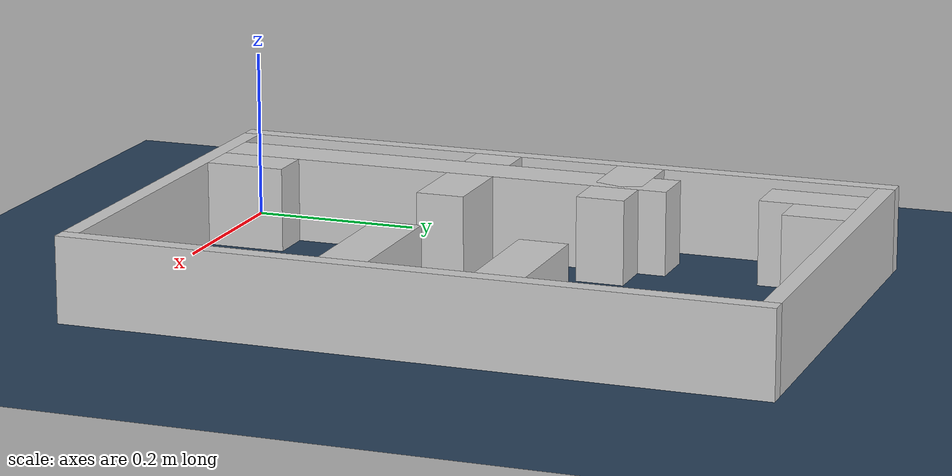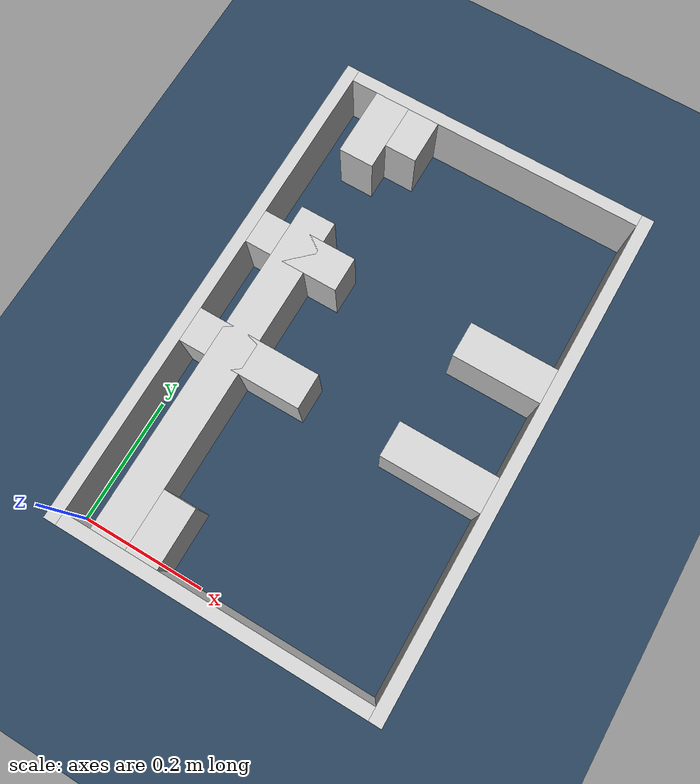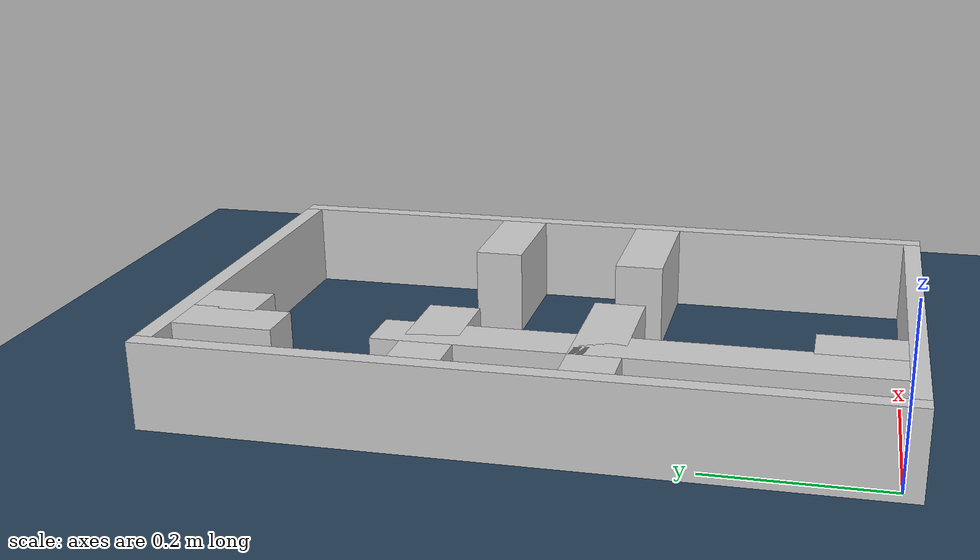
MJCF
<?xml version="1.0" ?>
<mujoco model="generated_real_template">
  <compiler angle="degree"/>
  <option timestep="0.002" integrator="implicitfast" iterations="100" cone="elliptic"/>
  <default>
    <geom density="1"/>
  </default>
  <asset>
    <texture builtin="gradient" height="3072" rgb1="0.3 0.5 0.7" rgb2="0 0 0" type="skybox" width="512"/>
    <texture builtin="checker" height="300" mark="edge" markrgb="0.8 0.8 0.8" name="groundplane" rgb1="0.2 0.3 0.4" rgb2="0.1 0.2 0.3" type="2d" width="300"/>
    <material name="groundplane" reflectance="0.2" texrepeat="5 5" texture="groundplane" texuniform="true"/>
  </asset>
  <worldbody>
    <light dir="0 0 -1" directional="true" pos="0 0 1.5"/>
    <geom name="floor" type="plane" condim="4" friction="0.5 0.005 0.001" material="groundplane" size="0 0 0.05"/>
    <body name="walls">
      <geom name="wall_boundary_left" type="box" condim="4" friction="1.0 0.005 0.0001" rgba="0.8 0.8 0.8 1" pos="-0.010000 0.387500 0.050000" euler="0 0 0.000000" size="0.010000 0.407500 0.050000"/>
      <geom name="wall_boundary_right" type="box" condim="4" friction="1.0 0.005 0.0001" rgba="0.8 0.8 0.8 1" pos="0.500000 0.387500 0.050000" euler="0 0 0.000000" size="0.010000 0.407500 0.050000"/>
      <geom name="wall_boundary_bottom" type="box" condim="4" friction="1.0 0.005 0.0001" rgba="0.8 0.8 0.8 1" pos="0.245000 -0.010000 0.050000" euler="0 0 0.000000" size="0.245000 0.010000 0.050000"/>
      <geom name="wall_boundary_top" type="box" condim="4" friction="1.0 0.005 0.0001" rgba="0.8 0.8 0.8 1" pos="0.245000 0.785000 0.050000" euler="0 0 0.000000" size="0.245000 0.010000 0.050000"/>
      <geom name="wall_inner_1_1" type="box" condim="4" friction="1.0 0.005 0.0001" rgba="0.8 0.8 0.8 1" pos="0.124024 0.047393 0.050000" euler="0 0 90.000000" size="0.047393 0.028500 0.050000"/>
      <geom name="wall_inner_1_2" type="box" condim="4" friction="1.0 0.005 0.0001" rgba="0.8 0.8 0.8 1" pos="0.124024 0.738644 0.050000" euler="0 0 90.000000" size="0.036356 0.028500 0.050000"/>
      <geom name="wall_inner_2_1" type="box" condim="4" friction="1.0 0.005 0.0001" rgba="0.8 0.8 0.8 1" pos="0.077304 0.489472 0.050000" euler="0 0 0.000000" size="0.077304 0.028500 0.050000"/>
      <geom name="wall_inner_2_2" type="box" condim="4" friction="1.0 0.005 0.0001" rgba="0.8 0.8 0.8 1" pos="0.419739 0.489472 0.050000" euler="0 0 0.000000" size="0.070261 0.028500 0.050000"/>
      <geom name="wall_inner_3_1" type="box" condim="4" friction="1.0 0.005 0.0001" rgba="0.8 0.8 0.8 1" pos="0.099816 0.311836 0.050000" euler="0 0 0.000000" size="0.099816 0.028500 0.050000"/>
      <geom name="wall_inner_3_2" type="box" condim="4" friction="1.0 0.005 0.0001" rgba="0.8 0.8 0.8 1" pos="0.410975 0.311836 0.050000" euler="0 0 0.000000" size="0.079025 0.028500 0.050000"/>
      <geom name="wall_inner_4_1" type="box" condim="4" friction="1.0 0.005 0.0001" rgba="0.8 0.8 0.8 1" pos="0.071944 0.275641 0.050000" euler="0 0 90.000000" size="0.275641 0.028500 0.050000"/>
      <geom name="wall_inner_4_2" type="box" condim="4" friction="1.0 0.005 0.0001" rgba="0.8 0.8 0.8 1" pos="0.071944 0.718192 0.050000" euler="0 0 90.000000" size="0.056808 0.028500 0.050000"/>
    </body>
  </worldbody>
</mujoco>
